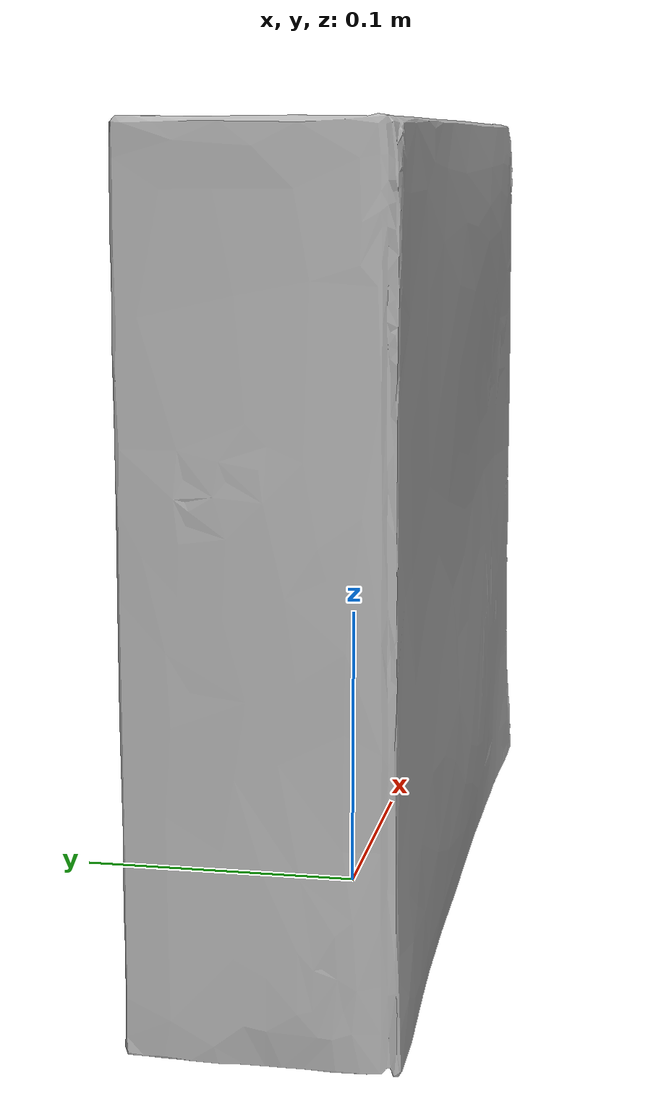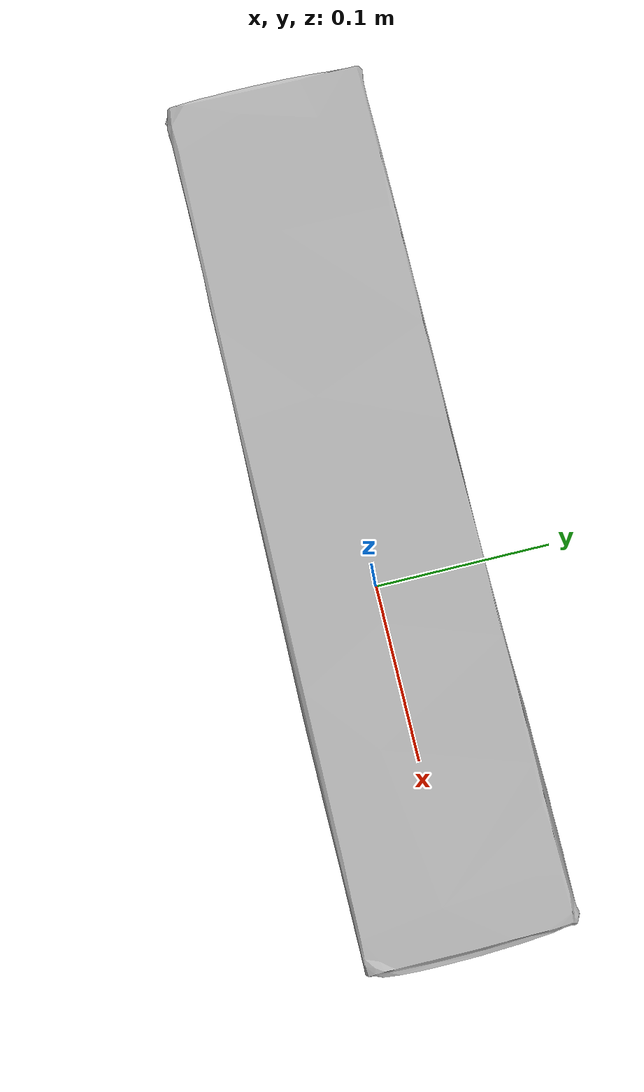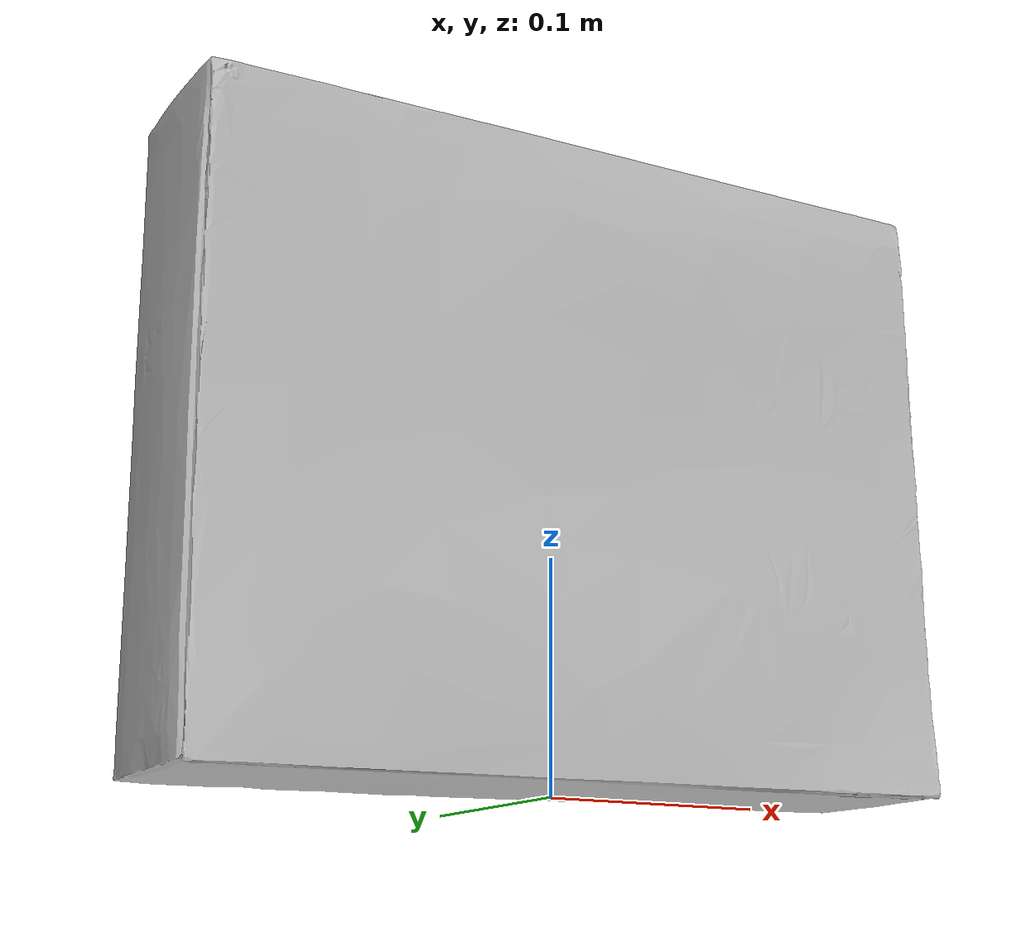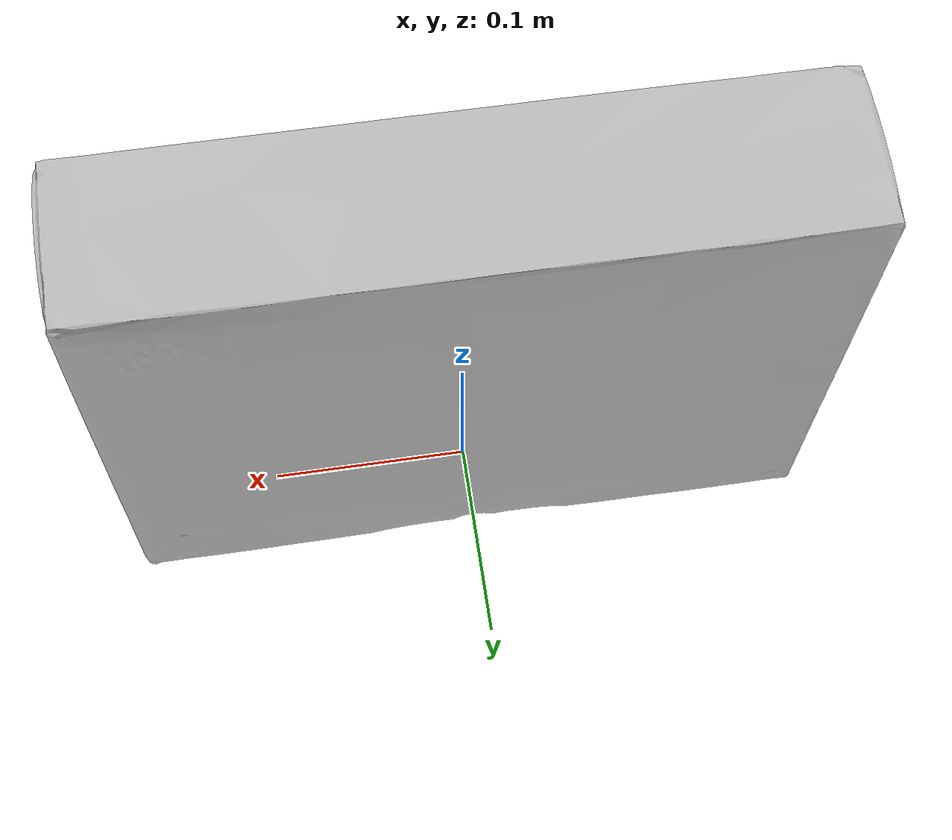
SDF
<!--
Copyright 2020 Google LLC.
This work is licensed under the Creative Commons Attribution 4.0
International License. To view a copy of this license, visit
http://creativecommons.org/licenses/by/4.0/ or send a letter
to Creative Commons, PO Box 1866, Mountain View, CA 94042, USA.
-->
<?xml version="1.0" ?>
<sdf version="1.6">
  <model name="Asus_X99Deluxe_Motherboard_ATX_LGA2011v3_Socket">
    <link name="link_0">
      <visual name="visual">
        <geometry>
          <mesh>
            <uri>meshes/model.obj</uri>
          </mesh>
        </geometry>
      </visual>
      <collision name="collision_0">
        <geometry>
          <mesh>
            <uri>meshes/model.obj</uri>
          </mesh>
        </geometry>
      </collision>
    </link>
  </model>
</sdf>
